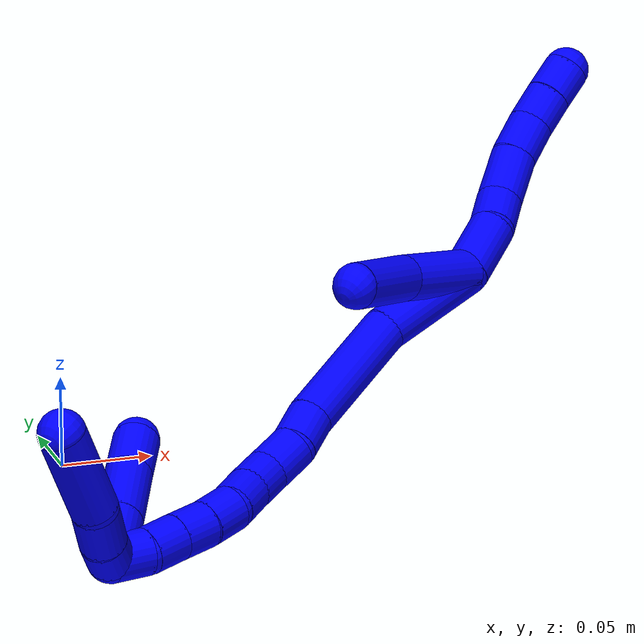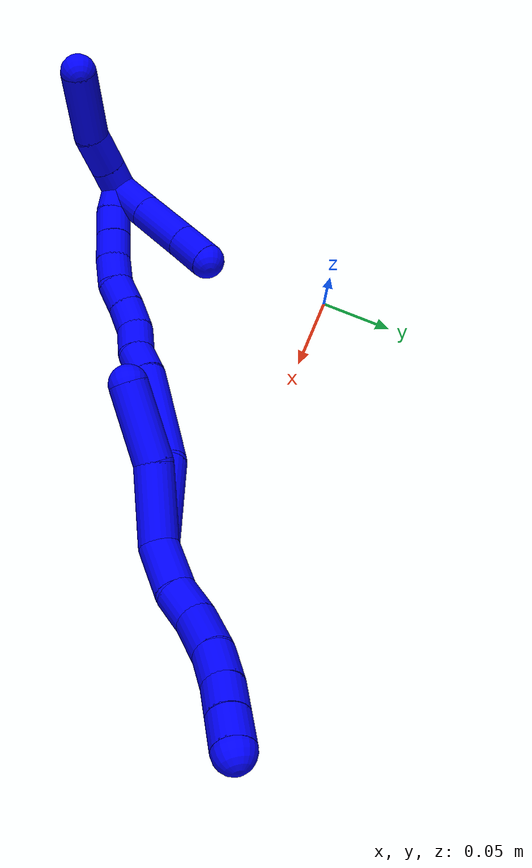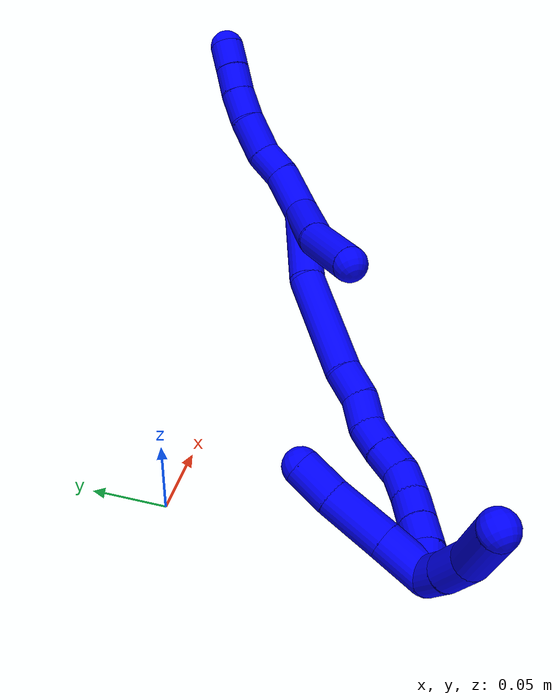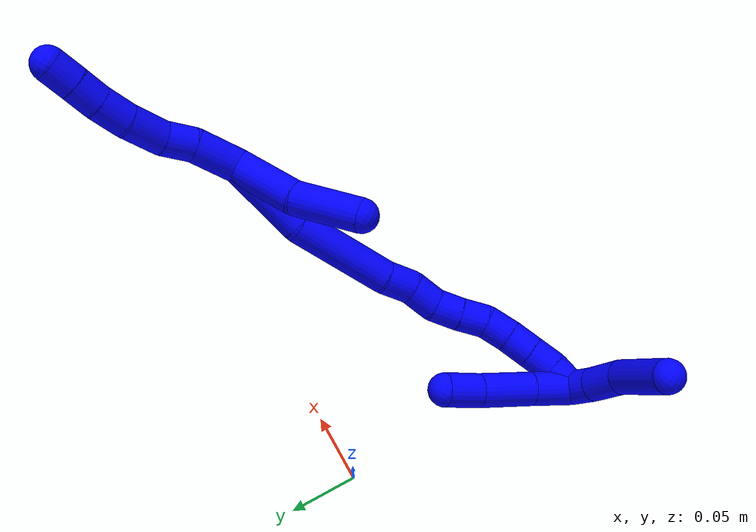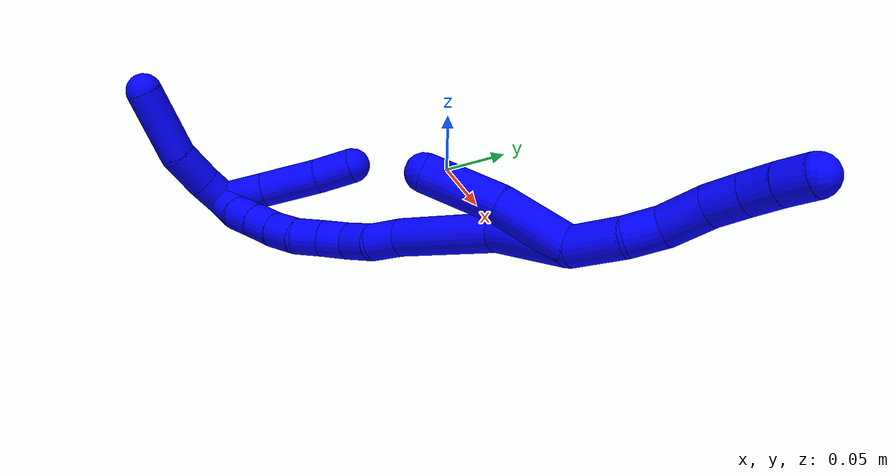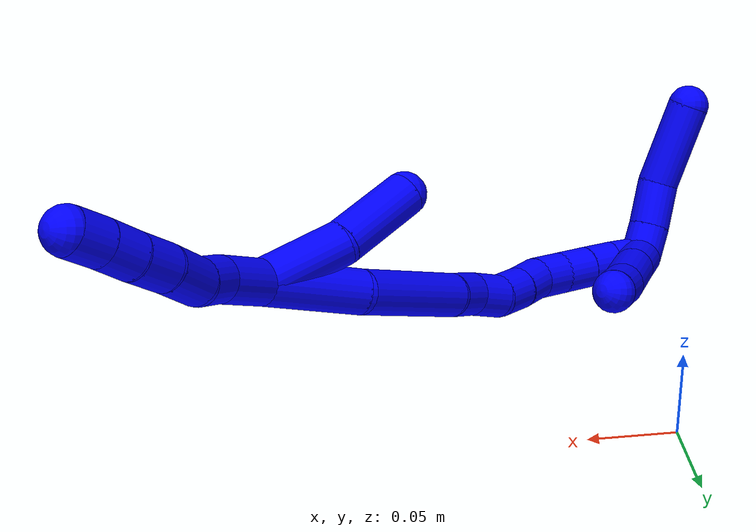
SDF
<sdf version="1.7">
 <world name="default">
  <model name="1">
   <static>0</static>
   <link name="1">
    <collision name="collision-cylinder-e_1_2_8">
     <pose>-0.001711 0.001912 0.017318 -0.109934 -0.097911 0.005392</pose>
     <geometry><cylinder><radius>0.0125</radius><length>0.035014</length></cylinder></geometry>
     <surface>
      <friction><ode><mu>1.16</mu><mu2>1.16</mu2><slip1>0</slip1><slip2>0</slip2></ode></friction>
      <contact><ode><kp>1e+06</kp><kd>1</kd><max_vel>0</max_vel><min_depth>0.001</min_depth></ode></contact>
     </surface>
    </collision>
    <visual name="visual-cylinder-e_1_2_8">
     <pose>-0.001711 0.001912 0.017318 -0.109934 -0.097911 0.005392</pose>
     <geometry><cylinder><radius>0.0125</radius><length>0.035014</length></cylinder></geometry>
     <material><ambient>0 0 1 1</ambient></material>
    </visual>
    <collision name="collision-cylinder-e_2_8_9">
     <pose>-0.004555 0.007637 0.04513 -0.348588 -0.101036 0.017805</pose>
     <geometry><cylinder><radius>0.0125</radius><length>0.022445</length></cylinder></geometry>
     <surface>
      <friction><ode><mu>1.16</mu><mu2>1.16</mu2><slip1>0</slip1><slip2>0</slip2></ode></friction>
      <contact><ode><kp>1e+06</kp><kd>1</kd><max_vel>0</max_vel><min_depth>0.001</min_depth></ode></contact>
     </surface>
    </collision>
    <visual name="visual-cylinder-e_2_8_9">
     <pose>-0.004555 0.007637 0.04513 -0.348588 -0.101036 0.017805</pose>
     <geometry><cylinder><radius>0.0125</radius><length>0.022445</length></cylinder></geometry>
     <material><ambient>0 0 1 1</ambient></material>
    </visual>
    <collision name="collision-cylinder-e_3_9_10">
     <pose>-0.010469 0.013508 0.069224 -0.150147 -0.334568 0.0254</pose>
     <geometry><cylinder><radius>0.0125</radius><length>0.029125</length></cylinder></geometry>
     <surface>
      <friction><ode><mu>1.16</mu><mu2>1.16</mu2><slip1>0</slip1><slip2>0</slip2></ode></friction>
      <contact><ode><kp>1e+06</kp><kd>1</kd><max_vel>0</max_vel><min_depth>0.001</min_depth></ode></contact>
     </surface>
    </collision>
    <visual name="visual-cylinder-e_3_9_10">
     <pose>-0.010469 0.013508 0.069224 -0.150147 -0.334568 0.0254</pose>
     <geometry><cylinder><radius>0.0125</radius><length>0.029125</length></cylinder></geometry>
     <material><ambient>0 0 1 1</ambient></material>
    </visual>
    <collision name="collision-cylinder-e_4_10_11">
     <pose>-0.018198 0.015718 0.093903 -0.013741 -0.260056 0.001797</pose>
     <geometry><cylinder><radius>0.0125</radius><length>0.022929</length></cylinder></geometry>
     <surface>
      <friction><ode><mu>1.16</mu><mu2>1.16</mu2><slip1>0</slip1><slip2>0</slip2></ode></friction>
      <contact><ode><kp>1e+06</kp><kd>1</kd><max_vel>0</max_vel><min_depth>0.001</min_depth></ode></contact>
     </surface>
    </collision>
    <visual name="visual-cylinder-e_4_10_11">
     <pose>-0.018198 0.015718 0.093903 -0.013741 -0.260056 0.001797</pose>
     <geometry><cylinder><radius>0.0125</radius><length>0.022929</length></cylinder></geometry>
     <material><ambient>0 0 1 1</ambient></material>
    </visual>
    <collision name="collision-cylinder-e_5_11_12">
     <pose>-0.02385 0.014982 0.114691 0.091251 -0.27054 -0.012428</pose>
     <geometry><cylinder><radius>0.0125</radius><length>0.020237</length></cylinder></geometry>
     <surface>
      <friction><ode><mu>1.16</mu><mu2>1.16</mu2><slip1>0</slip1><slip2>0</slip2></ode></friction>
      <contact><ode><kp>1e+06</kp><kd>1</kd><max_vel>0</max_vel><min_depth>0.001</min_depth></ode></contact>
     </surface>
    </collision>
    <visual name="visual-cylinder-e_5_11_12">
     <pose>-0.02385 0.014982 0.114691 0.091251 -0.27054 -0.012428</pose>
     <geometry><cylinder><radius>0.0125</radius><length>0.020237</length></cylinder></geometry>
     <material><ambient>0 0 1 1</ambient></material>
    </visual>
    <collision name="collision-cylinder-e_6_12_6">
     <pose>-0.028847 0.013249 0.134226 0.08568 -0.228362 -0.009832</pose>
     <geometry><cylinder><radius>0.0125</radius><length>0.020249</length></cylinder></geometry>
     <surface>
      <friction><ode><mu>1.16</mu><mu2>1.16</mu2><slip1>0</slip1><slip2>0</slip2></ode></friction>
      <contact><ode><kp>1e+06</kp><kd>1</kd><max_vel>0</max_vel><min_depth>0.001</min_depth></ode></contact>
     </surface>
    </collision>
    <visual name="visual-cylinder-e_6_12_6">
     <pose>-0.028847 0.013249 0.134226 0.08568 -0.228362 -0.009832</pose>
     <geometry><cylinder><radius>0.0125</radius><length>0.020249</length></cylinder></geometry>
     <material><ambient>0 0 1 1</ambient></material>
    </visual>
    <collision name="collision-cylinder-e_1_2_13">
     <pose>-0.013301 0.002261 -0.020741 -3.03303 -0.567535 2.77319</pose>
     <geometry><cylinder><radius>0.0125</radius><length>0.049486</length></cylinder></geometry>
     <surface>
      <friction><ode><mu>1.16</mu><mu2>1.16</mu2><slip1>0</slip1><slip2>0</slip2></ode></friction>
      <contact><ode><kp>1e+06</kp><kd>1</kd><max_vel>0</max_vel><min_depth>0.001</min_depth></ode></contact>
     </surface>
    </collision>
    <visual name="visual-cylinder-e_1_2_13">
     <pose>-0.013301 0.002261 -0.020741 -3.03303 -0.567535 2.77319</pose>
     <geometry><cylinder><radius>0.0125</radius><length>0.049486</length></cylinder></geometry>
     <material><ambient>0 0 1 1</ambient></material>
    </visual>
    <collision name="collision-cylinder-e_2_13_5">
     <pose>-0.040124 0.000651 -0.062461 2.95913 -0.564968 -2.53092</pose>
     <geometry><cylinder><radius>0.0125</radius><length>0.050514</length></cylinder></geometry>
     <surface>
      <friction><ode><mu>1.16</mu><mu2>1.16</mu2><slip1>0</slip1><slip2>0</slip2></ode></friction>
      <contact><ode><kp>1e+06</kp><kd>1</kd><max_vel>0</max_vel><min_depth>0.001</min_depth></ode></contact>
     </surface>
    </collision>
    <visual name="visual-cylinder-e_2_13_5">
     <pose>-0.040124 0.000651 -0.062461 2.95913 -0.564968 -2.53092</pose>
     <geometry><cylinder><radius>0.0125</radius><length>0.050514</length></cylinder></geometry>
     <material><ambient>0 0 1 1</ambient></material>
    </visual>
    <collision name="collision-cylinder-e_1_2_14">
     <pose>-0.001653 0.007883 -0.028838 -2.87475 -0.055248 0.406069</pose>
     <geometry><cylinder><radius>0.0125</radius><length>0.059884</length></cylinder></geometry>
     <surface>
      <friction><ode><mu>1.16</mu><mu2>1.16</mu2><slip1>0</slip1><slip2>0</slip2></ode></friction>
      <contact><ode><kp>1e+06</kp><kd>1</kd><max_vel>0</max_vel><min_depth>0.001</min_depth></ode></contact>
     </surface>
    </collision>
    <visual name="visual-cylinder-e_1_2_14">
     <pose>-0.001653 0.007883 -0.028838 -2.87475 -0.055248 0.406069</pose>
     <geometry><cylinder><radius>0.0125</radius><length>0.059884</length></cylinder></geometry>
     <material><ambient>0 0 1 1</ambient></material>
    </visual>
    <collision name="collision-cylinder-e_2_14_15">
     <pose>-0.00256 0.015799 -0.09507 -3.14071 0.01998 -3.05334</pose>
     <geometry><cylinder><radius>0.0125</radius><length>0.074803</length></cylinder></geometry>
     <surface>
      <friction><ode><mu>1.16</mu><mu2>1.16</mu2><slip1>0</slip1><slip2>0</slip2></ode></friction>
      <contact><ode><kp>1e+06</kp><kd>1</kd><max_vel>0</max_vel><min_depth>0.001</min_depth></ode></contact>
     </surface>
    </collision>
    <visual name="visual-cylinder-e_2_14_15">
     <pose>-0.00256 0.015799 -0.09507 -3.14071 0.01998 -3.05334</pose>
     <geometry><cylinder><radius>0.0125</radius><length>0.074803</length></cylinder></geometry>
     <material><ambient>0 0 1 1</ambient></material>
    </visual>
    <collision name="collision-cylinder-e_3_15_16">
     <pose>-0.001225 0.013929 -0.143432 2.9698 0.052718 0.594229</pose>
     <geometry><cylinder><radius>0.0125</radius><length>0.022294</length></cylinder></geometry>
     <surface>
      <friction><ode><mu>1.16</mu><mu2>1.16</mu2><slip1>0</slip1><slip2>0</slip2></ode></friction>
      <contact><ode><kp>1e+06</kp><kd>1</kd><max_vel>0</max_vel><min_depth>0.001</min_depth></ode></contact>
     </surface>
    </collision>
    <visual name="visual-cylinder-e_3_15_16">
     <pose>-0.001225 0.013929 -0.143432 2.9698 0.052718 0.594229</pose>
     <geometry><cylinder><radius>0.0125</radius><length>0.022294</length></cylinder></geometry>
     <material><ambient>0 0 1 1</ambient></material>
    </visual>
    <collision name="collision-cylinder-e_4_16_17">
     <pose>-0.00066 0.013392 -0.165379 -3.01784 -0.002 0.032271</pose>
     <geometry><cylinder><radius>0.0125</radius><length>0.022128</length></cylinder></geometry>
     <surface>
      <friction><ode><mu>1.16</mu><mu2>1.16</mu2><slip1>0</slip1><slip2>0</slip2></ode></friction>
      <contact><ode><kp>1e+06</kp><kd>1</kd><max_vel>0</max_vel><min_depth>0.001</min_depth></ode></contact>
     </surface>
    </collision>
    <visual name="visual-cylinder-e_4_16_17">
     <pose>-0.00066 0.013392 -0.165379 -3.01784 -0.002 0.032271</pose>
     <geometry><cylinder><radius>0.0125</radius><length>0.022128</length></cylinder></geometry>
     <material><ambient>0 0 1 1</ambient></material>
    </visual>
    <collision name="collision-cylinder-e_5_17_18">
     <pose>-0.002678 0.013317 -0.186276 2.99733 -0.196585 -1.87685</pose>
     <geometry><cylinder><radius>0.0125</radius><length>0.020437</length></cylinder></geometry>
     <surface>
      <friction><ode><mu>1.16</mu><mu2>1.16</mu2><slip1>0</slip1><slip2>0</slip2></ode></friction>
      <contact><ode><kp>1e+06</kp><kd>1</kd><max_vel>0</max_vel><min_depth>0.001</min_depth></ode></contact>
     </surface>
    </collision>
    <visual name="visual-cylinder-e_5_17_18">
     <pose>-0.002678 0.013317 -0.186276 2.99733 -0.196585 -1.87685</pose>
     <geometry><cylinder><radius>0.0125</radius><length>0.020437</length></cylinder></geometry>
     <material><ambient>0 0 1 1</ambient></material>
    </visual>
    <collision name="collision-cylinder-e_6_18_19">
     <pose>-0.006876 0.009641 -0.205835 2.91381 -0.218973 -1.53102</pose>
     <geometry><cylinder><radius>0.0125</radius><length>0.02028</length></cylinder></geometry>
     <surface>
      <friction><ode><mu>1.16</mu><mu2>1.16</mu2><slip1>0</slip1><slip2>0</slip2></ode></friction>
      <contact><ode><kp>1e+06</kp><kd>1</kd><max_vel>0</max_vel><min_depth>0.001</min_depth></ode></contact>
     </surface>
    </collision>
    <visual name="visual-cylinder-e_6_18_19">
     <pose>-0.006876 0.009641 -0.205835 2.91381 -0.218973 -1.53102</pose>
     <geometry><cylinder><radius>0.0125</radius><length>0.02028</length></cylinder></geometry>
     <material><ambient>0 0 1 1</ambient></material>
    </visual>
    <collision name="collision-cylinder-e_7_19_20">
     <pose>-0.011476 0.008148 -0.225205 -3.06548 -0.240951 2.53215</pose>
     <geometry><cylinder><radius>0.0125</radius><length>0.020091</length></cylinder></geometry>
     <surface>
      <friction><ode><mu>1.16</mu><mu2>1.16</mu2><slip1>0</slip1><slip2>0</slip2></ode></friction>
      <contact><ode><kp>1e+06</kp><kd>1</kd><max_vel>0</max_vel><min_depth>0.001</min_depth></ode></contact>
     </surface>
    </collision>
    <visual name="visual-cylinder-e_7_19_20">
     <pose>-0.011476 0.008148 -0.225205 -3.06548 -0.240951 2.53215</pose>
     <geometry><cylinder><radius>0.0125</radius><length>0.020091</length></cylinder></geometry>
     <material><ambient>0 0 1 1</ambient></material>
    </visual>
    <collision name="collision-cylinder-e_8_20_21">
     <pose>-0.016919 0.01051 -0.244347 -2.97113 -0.308571 2.13689</pose>
     <geometry><cylinder><radius>0.0125</radius><length>0.020055</length></cylinder></geometry>
     <surface>
      <friction><ode><mu>1.16</mu><mu2>1.16</mu2><slip1>0</slip1><slip2>0</slip2></ode></friction>
      <contact><ode><kp>1e+06</kp><kd>1</kd><max_vel>0</max_vel><min_depth>0.001</min_depth></ode></contact>
     </surface>
    </collision>
    <visual name="visual-cylinder-e_8_20_21">
     <pose>-0.016919 0.01051 -0.244347 -2.97113 -0.308571 2.13689</pose>
     <geometry><cylinder><radius>0.0125</radius><length>0.020055</length></cylinder></geometry>
     <material><ambient>0 0 1 1</ambient></material>
    </visual>
    <collision name="collision-cylinder-e_9_21_22">
     <pose>-0.022878 0.013675 -0.263213 -2.97964 -0.295385 2.14288</pose>
     <geometry><cylinder><radius>0.0125</radius><length>0.020018</length></cylinder></geometry>
     <surface>
      <friction><ode><mu>1.16</mu><mu2>1.16</mu2><slip1>0</slip1><slip2>0</slip2></ode></friction>
      <contact><ode><kp>1e+06</kp><kd>1</kd><max_vel>0</max_vel><min_depth>0.001</min_depth></ode></contact>
     </surface>
    </collision>
    <visual name="visual-cylinder-e_9_21_22">
     <pose>-0.022878 0.013675 -0.263213 -2.97964 -0.295385 2.14288</pose>
     <geometry><cylinder><radius>0.0125</radius><length>0.020018</length></cylinder></geometry>
     <material><ambient>0 0 1 1</ambient></material>
    </visual>
    <collision name="collision-cylinder-e_10_22_1">
     <pose>-0.029646 0.018929 -0.281118 -2.72804 -0.395459 1.52485</pose>
     <geometry><cylinder><radius>0.0125</radius><length>0.02001</length></cylinder></geometry>
     <surface>
      <friction><ode><mu>1.16</mu><mu2>1.16</mu2><slip1>0</slip1><slip2>0</slip2></ode></friction>
      <contact><ode><kp>1e+06</kp><kd>1</kd><max_vel>0</max_vel><min_depth>0.001</min_depth></ode></contact>
     </surface>
    </collision>
    <visual name="visual-cylinder-e_10_22_1">
     <pose>-0.029646 0.018929 -0.281118 -2.72804 -0.395459 1.52485</pose>
     <geometry><cylinder><radius>0.0125</radius><length>0.02001</length></cylinder></geometry>
     <material><ambient>0 0 1 1</ambient></material>
    </visual>
    <collision name="collision-cylinder-e_1_1_23">
     <pose>-0.042448 0.019061 -0.292461 2.24982 -1.09606 -1.81292</pose>
     <geometry><cylinder><radius>0.0125</radius><length>0.020122</length></cylinder></geometry>
     <surface>
      <friction><ode><mu>1.16</mu><mu2>1.16</mu2><slip1>0</slip1><slip2>0</slip2></ode></friction>
      <contact><ode><kp>1e+06</kp><kd>1</kd><max_vel>0</max_vel><min_depth>0.001</min_depth></ode></contact>
     </surface>
    </collision>
    <visual name="visual-cylinder-e_1_1_23">
     <pose>-0.042448 0.019061 -0.292461 2.24982 -1.09606 -1.81292</pose>
     <geometry><cylinder><radius>0.0125</radius><length>0.020122</length></cylinder></geometry>
     <material><ambient>0 0 1 1</ambient></material>
    </visual>
    <collision name="collision-cylinder-e_2_23_24">
     <pose>-0.0642 0.010493 -0.297685 2.00867 -1.16445 -1.60535</pose>
     <geometry><cylinder><radius>0.0125</radius><length>0.027877</length></cylinder></geometry>
     <surface>
      <friction><ode><mu>1.16</mu><mu2>1.16</mu2><slip1>0</slip1><slip2>0</slip2></ode></friction>
      <contact><ode><kp>1e+06</kp><kd>1</kd><max_vel>0</max_vel><min_depth>0.001</min_depth></ode></contact>
     </surface>
    </collision>
    <visual name="visual-cylinder-e_2_23_24">
     <pose>-0.0642 0.010493 -0.297685 2.00867 -1.16445 -1.60535</pose>
     <geometry><cylinder><radius>0.0125</radius><length>0.027877</length></cylinder></geometry>
     <material><ambient>0 0 1 1</ambient></material>
    </visual>
    <collision name="collision-cylinder-e_3_24_4">
     <pose>-0.102795 0.002811 -0.301908 2.18226 -1.44402 -2.07448</pose>
     <geometry><cylinder><radius>0.0125</radius><length>0.052001</length></cylinder></geometry>
     <surface>
      <friction><ode><mu>1.16</mu><mu2>1.16</mu2><slip1>0</slip1><slip2>0</slip2></ode></friction>
      <contact><ode><kp>1e+06</kp><kd>1</kd><max_vel>0</max_vel><min_depth>0.001</min_depth></ode></contact>
     </surface>
    </collision>
    <visual name="visual-cylinder-e_3_24_4">
     <pose>-0.102795 0.002811 -0.301908 2.18226 -1.44402 -2.07448</pose>
     <geometry><cylinder><radius>0.0125</radius><length>0.052001</length></cylinder></geometry>
     <material><ambient>0 0 1 1</ambient></material>
    </visual>
    <collision name="collision-cylinder-e_1_1_25">
     <pose>-0.033328 0.030374 -0.275566 -0.504559 0.010727 -0.002765</pose>
     <geometry><cylinder><radius>0.0125</radius><length>0.032002</length></cylinder></geometry>
     <surface>
      <friction><ode><mu>1.16</mu><mu2>1.16</mu2><slip1>0</slip1><slip2>0</slip2></ode></friction>
      <contact><ode><kp>1e+06</kp><kd>1</kd><max_vel>0</max_vel><min_depth>0.001</min_depth></ode></contact>
     </surface>
    </collision>
    <visual name="visual-cylinder-e_1_1_25">
     <pose>-0.033328 0.030374 -0.275566 -0.504559 0.010727 -0.002765</pose>
     <geometry><cylinder><radius>0.0125</radius><length>0.032002</length></cylinder></geometry>
     <material><ambient>0 0 1 1</ambient></material>
    </visual>
    <collision name="collision-cylinder-e_2_25_26">
     <pose>-0.032971 0.048189 -0.243782 -0.515764 0.009088 -0.002397</pose>
     <geometry><cylinder><radius>0.0125</radius><length>0.040875</length></cylinder></geometry>
     <surface>
      <friction><ode><mu>1.16</mu><mu2>1.16</mu2><slip1>0</slip1><slip2>0</slip2></ode></friction>
      <contact><ode><kp>1e+06</kp><kd>1</kd><max_vel>0</max_vel><min_depth>0.001</min_depth></ode></contact>
     </surface>
    </collision>
    <visual name="visual-cylinder-e_2_25_26">
     <pose>-0.032971 0.048189 -0.243782 -0.515764 0.009088 -0.002397</pose>
     <geometry><cylinder><radius>0.0125</radius><length>0.040875</length></cylinder></geometry>
     <material><ambient>0 0 1 1</ambient></material>
    </visual>
    <collision name="collision-cylinder-e_3_26_3">
     <pose>-0.033591 0.064257 -0.213863 -0.458253 -0.059478 0.013875</pose>
     <geometry><cylinder><radius>0.0125</radius><length>0.027123</length></cylinder></geometry>
     <surface>
      <friction><ode><mu>1.16</mu><mu2>1.16</mu2><slip1>0</slip1><slip2>0</slip2></ode></friction>
      <contact><ode><kp>1e+06</kp><kd>1</kd><max_vel>0</max_vel><min_depth>0.001</min_depth></ode></contact>
     </surface>
    </collision>
    <visual name="visual-cylinder-e_3_26_3">
     <pose>-0.033591 0.064257 -0.213863 -0.458253 -0.059478 0.013875</pose>
     <geometry><cylinder><radius>0.0125</radius><length>0.027123</length></cylinder></geometry>
     <material><ambient>0 0 1 1</ambient></material>
    </visual>
    <collision name="collision-sphere-3">
     <pose>-0.034397 0.070246 -0.201722 0 -0 0</pose>
     <geometry><sphere><radius>0.0125</radius></sphere></geometry>
     <surface>
      <friction><ode><mu>1.16</mu><mu2>1.16</mu2><slip1>0</slip1><slip2>0</slip2></ode></friction>
      <contact><ode><kp>1e+06</kp><kd>1</kd><max_vel>0</max_vel><min_depth>0.001</min_depth></ode></contact>
     </surface>
    </collision>
    <visual name="visual-sphere-3">
     <pose>-0.034397 0.070246 -0.201722 0 -0 0</pose>
     <geometry><sphere><radius>0.0125</radius></sphere></geometry>
     <material><ambient>0 0 1 1</ambient></material>
    </visual>
    <collision name="collision-sphere-26">
     <pose>-0.032785 0.058268 -0.226003 0 -0 0</pose>
     <geometry><sphere><radius>0.0125</radius></sphere></geometry>
     <surface>
      <friction><ode><mu>1.16</mu><mu2>1.16</mu2><slip1>0</slip1><slip2>0</slip2></ode></friction>
      <contact><ode><kp>1e+06</kp><kd>1</kd><max_vel>0</max_vel><min_depth>0.001</min_depth></ode></contact>
     </surface>
    </collision>
    <visual name="visual-sphere-26">
     <pose>-0.032785 0.058268 -0.226003 0 -0 0</pose>
     <geometry><sphere><radius>0.0125</radius></sphere></geometry>
     <material><ambient>0 0 1 1</ambient></material>
    </visual>
    <collision name="collision-sphere-25">
     <pose>-0.033157 0.038109 -0.26156 0 -0 0</pose>
     <geometry><sphere><radius>0.0125</radius></sphere></geometry>
     <surface>
      <friction><ode><mu>1.16</mu><mu2>1.16</mu2><slip1>0</slip1><slip2>0</slip2></ode></friction>
      <contact><ode><kp>1e+06</kp><kd>1</kd><max_vel>0</max_vel><min_depth>0.001</min_depth></ode></contact>
     </surface>
    </collision>
    <visual name="visual-sphere-25">
     <pose>-0.033157 0.038109 -0.26156 0 -0 0</pose>
     <geometry><sphere><radius>0.0125</radius></sphere></geometry>
     <material><ambient>0 0 1 1</ambient></material>
    </visual>
    <collision name="collision-sphere-4">
     <pose>-0.128587 0.00012 -0.303795 0 -0 0</pose>
     <geometry><sphere><radius>0.0125</radius></sphere></geometry>
     <surface>
      <friction><ode><mu>1.16</mu><mu2>1.16</mu2><slip1>0</slip1><slip2>0</slip2></ode></friction>
      <contact><ode><kp>1e+06</kp><kd>1</kd><max_vel>0</max_vel><min_depth>0.001</min_depth></ode></contact>
     </surface>
    </collision>
    <visual name="visual-sphere-4">
     <pose>-0.128587 0.00012 -0.303795 0 -0 0</pose>
     <geometry><sphere><radius>0.0125</radius></sphere></geometry>
     <material><ambient>0 0 1 1</ambient></material>
    </visual>
    <collision name="collision-sphere-24">
     <pose>-0.077003 0.005503 -0.300021 0 -0 0</pose>
     <geometry><sphere><radius>0.0125</radius></sphere></geometry>
     <surface>
      <friction><ode><mu>1.16</mu><mu2>1.16</mu2><slip1>0</slip1><slip2>0</slip2></ode></friction>
      <contact><ode><kp>1e+06</kp><kd>1</kd><max_vel>0</max_vel><min_depth>0.001</min_depth></ode></contact>
     </surface>
    </collision>
    <visual name="visual-sphere-24">
     <pose>-0.077003 0.005503 -0.300021 0 -0 0</pose>
     <geometry><sphere><radius>0.0125</radius></sphere></geometry>
     <material><ambient>0 0 1 1</ambient></material>
    </visual>
    <collision name="collision-sphere-23">
     <pose>-0.051397 0.015482 -0.295349 0 -0 0</pose>
     <geometry><sphere><radius>0.0125</radius></sphere></geometry>
     <surface>
      <friction><ode><mu>1.16</mu><mu2>1.16</mu2><slip1>0</slip1><slip2>0</slip2></ode></friction>
      <contact><ode><kp>1e+06</kp><kd>1</kd><max_vel>0</max_vel><min_depth>0.001</min_depth></ode></contact>
     </surface>
    </collision>
    <visual name="visual-sphere-23">
     <pose>-0.051397 0.015482 -0.295349 0 -0 0</pose>
     <geometry><sphere><radius>0.0125</radius></sphere></geometry>
     <material><ambient>0 0 1 1</ambient></material>
    </visual>
    <collision name="collision-sphere-1">
     <pose>-0.0335 0.02264 -0.289573 0 -0 0</pose>
     <geometry><sphere><radius>0.0125</radius></sphere></geometry>
     <surface>
      <friction><ode><mu>1.16</mu><mu2>1.16</mu2><slip1>0</slip1><slip2>0</slip2></ode></friction>
      <contact><ode><kp>1e+06</kp><kd>1</kd><max_vel>0</max_vel><min_depth>0.001</min_depth></ode></contact>
     </surface>
    </collision>
    <visual name="visual-sphere-1">
     <pose>-0.0335 0.02264 -0.289573 0 -0 0</pose>
     <geometry><sphere><radius>0.0125</radius></sphere></geometry>
     <material><ambient>0 0 1 1</ambient></material>
    </visual>
    <collision name="collision-sphere-22">
     <pose>-0.025791 0.015219 -0.272663 0 -0 0</pose>
     <geometry><sphere><radius>0.0125</radius></sphere></geometry>
     <surface>
      <friction><ode><mu>1.16</mu><mu2>1.16</mu2><slip1>0</slip1><slip2>0</slip2></ode></friction>
      <contact><ode><kp>1e+06</kp><kd>1</kd><max_vel>0</max_vel><min_depth>0.001</min_depth></ode></contact>
     </surface>
    </collision>
    <visual name="visual-sphere-22">
     <pose>-0.025791 0.015219 -0.272663 0 -0 0</pose>
     <geometry><sphere><radius>0.0125</radius></sphere></geometry>
     <material><ambient>0 0 1 1</ambient></material>
    </visual>
    <collision name="collision-sphere-21">
     <pose>-0.019964 0.012131 -0.253763 0 -0 0</pose>
     <geometry><sphere><radius>0.0125</radius></sphere></geometry>
     <surface>
      <friction><ode><mu>1.16</mu><mu2>1.16</mu2><slip1>0</slip1><slip2>0</slip2></ode></friction>
      <contact><ode><kp>1e+06</kp><kd>1</kd><max_vel>0</max_vel><min_depth>0.001</min_depth></ode></contact>
     </surface>
    </collision>
    <visual name="visual-sphere-21">
     <pose>-0.019964 0.012131 -0.253763 0 -0 0</pose>
     <geometry><sphere><radius>0.0125</radius></sphere></geometry>
     <material><ambient>0 0 1 1</ambient></material>
    </visual>
    <collision name="collision-sphere-12">
     <pose>-0.026555 0.014093 0.1244 0 -0 0</pose>
     <geometry><sphere><radius>0.0125</radius></sphere></geometry>
     <surface>
      <friction><ode><mu>1.16</mu><mu2>1.16</mu2><slip1>0</slip1><slip2>0</slip2></ode></friction>
      <contact><ode><kp>1e+06</kp><kd>1</kd><max_vel>0</max_vel><min_depth>0.001</min_depth></ode></contact>
     </surface>
    </collision>
    <visual name="visual-sphere-12">
     <pose>-0.026555 0.014093 0.1244 0 -0 0</pose>
     <geometry><sphere><radius>0.0125</radius></sphere></geometry>
     <material><ambient>0 0 1 1</ambient></material>
    </visual>
    <collision name="collision-sphere-11">
     <pose>-0.021146 0.01587 0.104981 0 -0 0</pose>
     <geometry><sphere><radius>0.0125</radius></sphere></geometry>
     <surface>
      <friction><ode><mu>1.16</mu><mu2>1.16</mu2><slip1>0</slip1><slip2>0</slip2></ode></friction>
      <contact><ode><kp>1e+06</kp><kd>1</kd><max_vel>0</max_vel><min_depth>0.001</min_depth></ode></contact>
     </surface>
    </collision>
    <visual name="visual-sphere-11">
     <pose>-0.021146 0.01587 0.104981 0 -0 0</pose>
     <geometry><sphere><radius>0.0125</radius></sphere></geometry>
     <material><ambient>0 0 1 1</ambient></material>
    </visual>
    <collision name="collision-sphere-10">
     <pose>-0.01525 0.015566 0.082825 0 -0 0</pose>
     <geometry><sphere><radius>0.0125</radius></sphere></geometry>
     <surface>
      <friction><ode><mu>1.16</mu><mu2>1.16</mu2><slip1>0</slip1><slip2>0</slip2></ode></friction>
      <contact><ode><kp>1e+06</kp><kd>1</kd><max_vel>0</max_vel><min_depth>0.001</min_depth></ode></contact>
     </surface>
    </collision>
    <visual name="visual-sphere-10">
     <pose>-0.01525 0.015566 0.082825 0 -0 0</pose>
     <geometry><sphere><radius>0.0125</radius></sphere></geometry>
     <material><ambient>0 0 1 1</ambient></material>
    </visual>
    <collision name="collision-sphere-9">
     <pose>-0.005687 0.011451 0.055624 0 -0 0</pose>
     <geometry><sphere><radius>0.0125</radius></sphere></geometry>
     <surface>
      <friction><ode><mu>1.16</mu><mu2>1.16</mu2><slip1>0</slip1><slip2>0</slip2></ode></friction>
      <contact><ode><kp>1e+06</kp><kd>1</kd><max_vel>0</max_vel><min_depth>0.001</min_depth></ode></contact>
     </surface>
    </collision>
    <visual name="visual-sphere-9">
     <pose>-0.005687 0.011451 0.055624 0 -0 0</pose>
     <geometry><sphere><radius>0.0125</radius></sphere></geometry>
     <material><ambient>0 0 1 1</ambient></material>
    </visual>
    <collision name="collision-sphere-2">
     <geometry><sphere><radius>0.0125</radius></sphere></geometry>
     <surface>
      <friction><ode><mu>1.16</mu><mu2>1.16</mu2><slip1>0</slip1><slip2>0</slip2></ode></friction>
      <contact><ode><kp>1e+06</kp><kd>1</kd><max_vel>0</max_vel><min_depth>0.001</min_depth></ode></contact>
     </surface>
    </collision>
    <visual name="visual-sphere-2">
     <geometry><sphere><radius>0.0125</radius></sphere></geometry>
     <material><ambient>0 0 1 1</ambient></material>
    </visual>
    <collision name="collision-sphere-19">
     <pose>-0.009079 0.007406 -0.215477 0 -0 0</pose>
     <geometry><sphere><radius>0.0125</radius></sphere></geometry>
     <surface>
      <friction><ode><mu>1.16</mu><mu2>1.16</mu2><slip1>0</slip1><slip2>0</slip2></ode></friction>
      <contact><ode><kp>1e+06</kp><kd>1</kd><max_vel>0</max_vel><min_depth>0.001</min_depth></ode></contact>
     </surface>
    </collision>
    <visual name="visual-sphere-19">
     <pose>-0.009079 0.007406 -0.215477 0 -0 0</pose>
     <geometry><sphere><radius>0.0125</radius></sphere></geometry>
     <material><ambient>0 0 1 1</ambient></material>
    </visual>
    <collision name="collision-sphere-8">
     <pose>-0.003423 0.003823 0.034636 0 -0 0</pose>
     <geometry><sphere><radius>0.0125</radius></sphere></geometry>
     <surface>
      <friction><ode><mu>1.16</mu><mu2>1.16</mu2><slip1>0</slip1><slip2>0</slip2></ode></friction>
      <contact><ode><kp>1e+06</kp><kd>1</kd><max_vel>0</max_vel><min_depth>0.001</min_depth></ode></contact>
     </surface>
    </collision>
    <visual name="visual-sphere-8">
     <pose>-0.003423 0.003823 0.034636 0 -0 0</pose>
     <geometry><sphere><radius>0.0125</radius></sphere></geometry>
     <material><ambient>0 0 1 1</ambient></material>
    </visual>
    <collision name="collision-sphere-6">
     <pose>-0.031139 0.012405 0.144052 0 -0 0</pose>
     <geometry><sphere><radius>0.0125</radius></sphere></geometry>
     <surface>
      <friction><ode><mu>1.16</mu><mu2>1.16</mu2><slip1>0</slip1><slip2>0</slip2></ode></friction>
      <contact><ode><kp>1e+06</kp><kd>1</kd><max_vel>0</max_vel><min_depth>0.001</min_depth></ode></contact>
     </surface>
    </collision>
    <visual name="visual-sphere-6">
     <pose>-0.031139 0.012405 0.144052 0 -0 0</pose>
     <geometry><sphere><radius>0.0125</radius></sphere></geometry>
     <material><ambient>0 0 1 1</ambient></material>
    </visual>
    <collision name="collision-sphere-13">
     <pose>-0.026602 0.004521 -0.041483 0 -0 0</pose>
     <geometry><sphere><radius>0.0125</radius></sphere></geometry>
     <surface>
      <friction><ode><mu>1.16</mu><mu2>1.16</mu2><slip1>0</slip1><slip2>0</slip2></ode></friction>
      <contact><ode><kp>1e+06</kp><kd>1</kd><max_vel>0</max_vel><min_depth>0.001</min_depth></ode></contact>
     </surface>
    </collision>
    <visual name="visual-sphere-13">
     <pose>-0.026602 0.004521 -0.041483 0 -0 0</pose>
     <geometry><sphere><radius>0.0125</radius></sphere></geometry>
     <material><ambient>0 0 1 1</ambient></material>
    </visual>
    <collision name="collision-sphere-5">
     <pose>-0.053646 -0.00322 -0.083439 0 -0 0</pose>
     <geometry><sphere><radius>0.0125</radius></sphere></geometry>
     <surface>
      <friction><ode><mu>1.16</mu><mu2>1.16</mu2><slip1>0</slip1><slip2>0</slip2></ode></friction>
      <contact><ode><kp>1e+06</kp><kd>1</kd><max_vel>0</max_vel><min_depth>0.001</min_depth></ode></contact>
     </surface>
    </collision>
    <visual name="visual-sphere-5">
     <pose>-0.053646 -0.00322 -0.083439 0 -0 0</pose>
     <geometry><sphere><radius>0.0125</radius></sphere></geometry>
     <material><ambient>0 0 1 1</ambient></material>
    </visual>
    <collision name="collision-sphere-14">
     <pose>-0.003307 0.015766 -0.057676 0 -0 0</pose>
     <geometry><sphere><radius>0.0125</radius></sphere></geometry>
     <surface>
      <friction><ode><mu>1.16</mu><mu2>1.16</mu2><slip1>0</slip1><slip2>0</slip2></ode></friction>
      <contact><ode><kp>1e+06</kp><kd>1</kd><max_vel>0</max_vel><min_depth>0.001</min_depth></ode></contact>
     </surface>
    </collision>
    <visual name="visual-sphere-14">
     <pose>-0.003307 0.015766 -0.057676 0 -0 0</pose>
     <geometry><sphere><radius>0.0125</radius></sphere></geometry>
     <material><ambient>0 0 1 1</ambient></material>
    </visual>
    <collision name="collision-sphere-15">
     <pose>-0.001812 0.015832 -0.132464 0 -0 0</pose>
     <geometry><sphere><radius>0.0125</radius></sphere></geometry>
     <surface>
      <friction><ode><mu>1.16</mu><mu2>1.16</mu2><slip1>0</slip1><slip2>0</slip2></ode></friction>
      <contact><ode><kp>1e+06</kp><kd>1</kd><max_vel>0</max_vel><min_depth>0.001</min_depth></ode></contact>
     </surface>
    </collision>
    <visual name="visual-sphere-15">
     <pose>-0.001812 0.015832 -0.132464 0 -0 0</pose>
     <geometry><sphere><radius>0.0125</radius></sphere></geometry>
     <material><ambient>0 0 1 1</ambient></material>
    </visual>
    <collision name="collision-sphere-16">
     <pose>-0.000638 0.012026 -0.154399 0 -0 0</pose>
     <geometry><sphere><radius>0.0125</radius></sphere></geometry>
     <surface>
      <friction><ode><mu>1.16</mu><mu2>1.16</mu2><slip1>0</slip1><slip2>0</slip2></ode></friction>
      <contact><ode><kp>1e+06</kp><kd>1</kd><max_vel>0</max_vel><min_depth>0.001</min_depth></ode></contact>
     </surface>
    </collision>
    <visual name="visual-sphere-16">
     <pose>-0.000638 0.012026 -0.154399 0 -0 0</pose>
     <geometry><sphere><radius>0.0125</radius></sphere></geometry>
     <material><ambient>0 0 1 1</ambient></material>
    </visual>
    <collision name="collision-sphere-17">
     <pose>-0.000682 0.014758 -0.176358 0 -0 0</pose>
     <geometry><sphere><radius>0.0125</radius></sphere></geometry>
     <surface>
      <friction><ode><mu>1.16</mu><mu2>1.16</mu2><slip1>0</slip1><slip2>0</slip2></ode></friction>
      <contact><ode><kp>1e+06</kp><kd>1</kd><max_vel>0</max_vel><min_depth>0.001</min_depth></ode></contact>
     </surface>
    </collision>
    <visual name="visual-sphere-17">
     <pose>-0.000682 0.014758 -0.176358 0 -0 0</pose>
     <geometry><sphere><radius>0.0125</radius></sphere></geometry>
     <material><ambient>0 0 1 1</ambient></material>
    </visual>
    <collision name="collision-sphere-18">
     <pose>-0.004674 0.011876 -0.196193 0 -0 0</pose>
     <geometry><sphere><radius>0.0125</radius></sphere></geometry>
     <surface>
      <friction><ode><mu>1.16</mu><mu2>1.16</mu2><slip1>0</slip1><slip2>0</slip2></ode></friction>
      <contact><ode><kp>1e+06</kp><kd>1</kd><max_vel>0</max_vel><min_depth>0.001</min_depth></ode></contact>
     </surface>
    </collision>
    <visual name="visual-sphere-18">
     <pose>-0.004674 0.011876 -0.196193 0 -0 0</pose>
     <geometry><sphere><radius>0.0125</radius></sphere></geometry>
     <material><ambient>0 0 1 1</ambient></material>
    </visual>
    <collision name="collision-sphere-20">
     <pose>-0.013873 0.00889 -0.234932 0 -0 0</pose>
     <geometry><sphere><radius>0.0125</radius></sphere></geometry>
     <surface>
      <friction><ode><mu>1.16</mu><mu2>1.16</mu2><slip1>0</slip1><slip2>0</slip2></ode></friction>
      <contact><ode><kp>1e+06</kp><kd>1</kd><max_vel>0</max_vel><min_depth>0.001</min_depth></ode></contact>
     </surface>
    </collision>
    <visual name="visual-sphere-20">
     <pose>-0.013873 0.00889 -0.234932 0 -0 0</pose>
     <geometry><sphere><radius>0.0125</radius></sphere></geometry>
     <material><ambient>0 0 1 1</ambient></material>
    </visual>
    <inertial>
     <pose>-0.024131 0.014628 -0.122423 0 -0 0</pose>
     <mass>0.75</mass>
     <inertia><ixx>-2.5e-05</ixx><ixy>0</ixy><ixz>0</ixz><iyy>9.3e-05</iyy><iyz>0</iyz><izz>1.4e-05</izz></inertia>
    </inertial>
   </link>
   <pose>0.219171 -0.028054 0.096074 -0.288606 1.15317 0.321421</pose>
  </model>
 </world>
</sdf>
